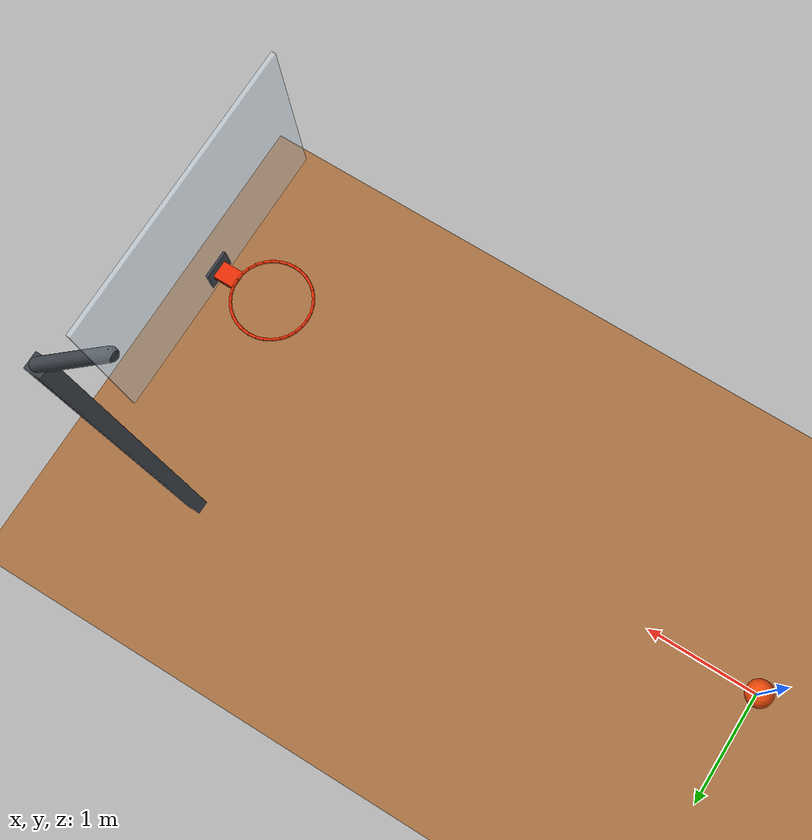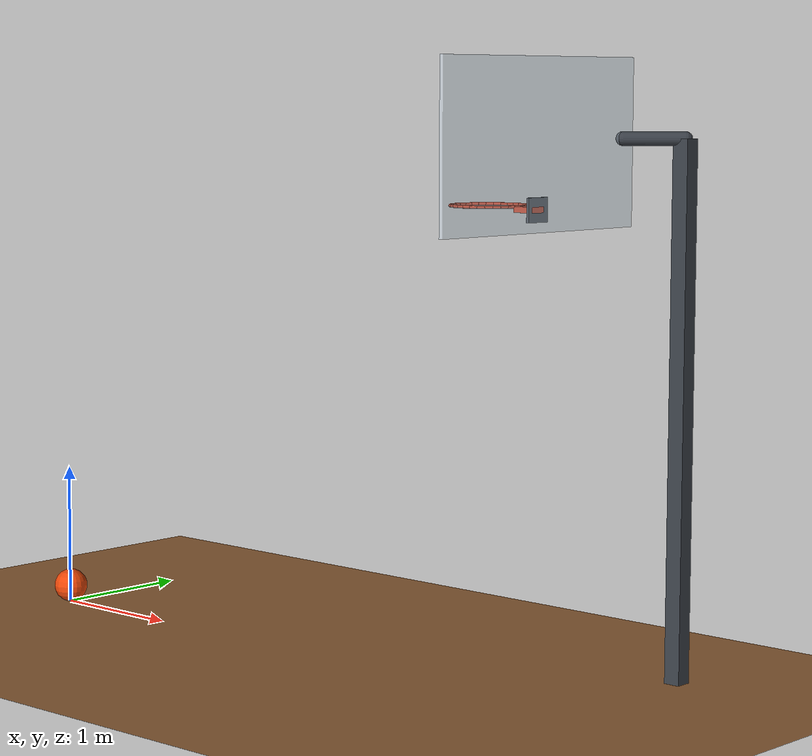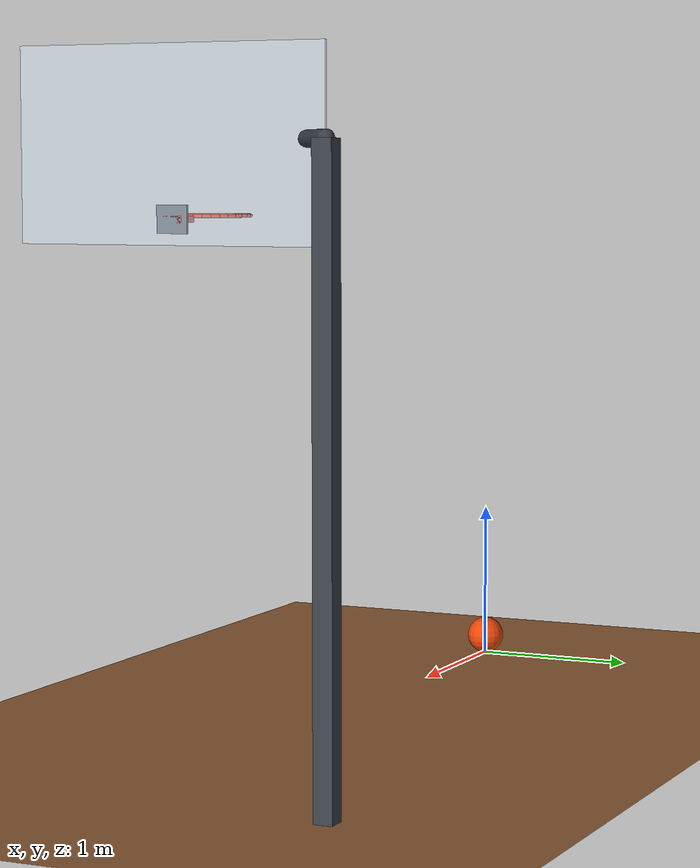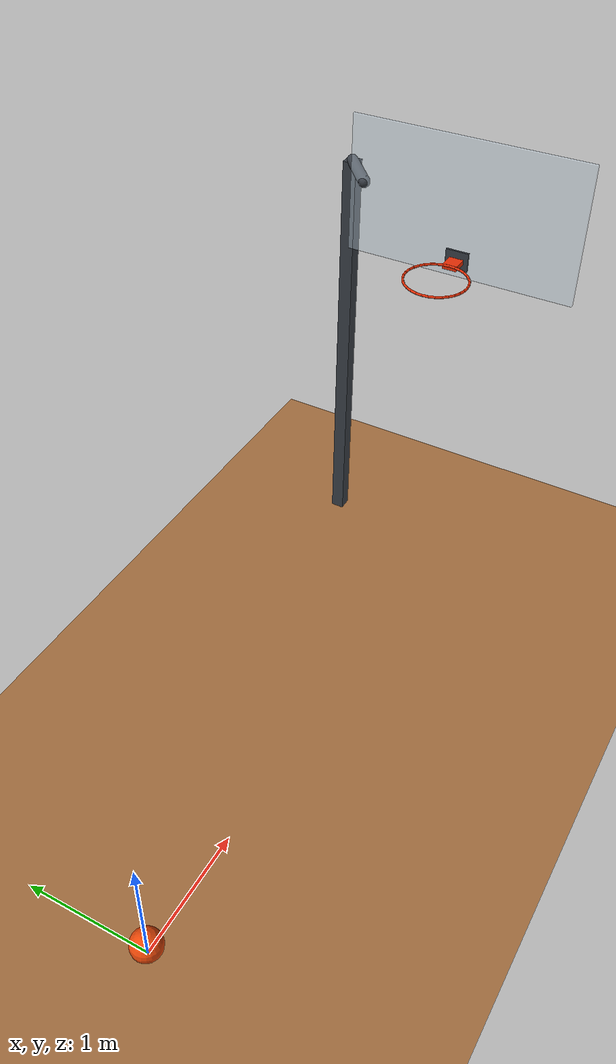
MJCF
<mujoco model="basketball_shot">
  <compiler angle="degree"/>
  <option timestep="0.002" gravity="0 0 -9.81" integrator="RK4"/>

  <visual>
    <global offwidth="1280" offheight="720"/>
    <headlight ambient="0.35 0.35 0.35" diffuse="0.65 0.65 0.65" specular="0.2 0.2 0.2"/>
  </visual>

  <worldbody>
    <light name="court_light" pos="2 -3 8" dir="0 0.3 -1" directional="true"/>
    <camera name="shot_view" pos="2 -11 6" xyaxes="1 0 0 0 0.341743 0.939793"/>

    <geom name="floor" type="plane" pos="0 0 0" size="10 7 0.1" rgba="0.64 0.43 0.25 1" friction="0.7 0.01 0.001"/>

    <!-- Radius 0.12 m gives a regulation circumference of approximately 0.754 m. -->
    <body name="ball" pos="0 0 0.12">
      <freejoint/>
      <geom name="ball" type="sphere" size="0.12" mass="0.624" rgba="0.92 0.28 0.035 1" friction="0.8 0.01 0.001"/>
    </body>

    <!-- Rim center is 4 m horizontally from launch and 3.05 m above the floor. -->
    <body name="hoop" pos="4 0 3.05">
      <!-- The 32 capsule segments provide a minimum clear diameter of 0.4572 m. -->
      <geom name="rim_00" type="capsule" fromto="0.238750 0 0 0.234162 0.046578 0" size="0.009" rgba="0.9 0.18 0.025 1"/>
      <geom name="rim_01" type="capsule" fromto="0.234162 0.046578 0 0.220576 0.091366 0" size="0.009" rgba="0.9 0.18 0.025 1"/>
      <geom name="rim_02" type="capsule" fromto="0.220576 0.091366 0 0.198513 0.132642 0" size="0.009" rgba="0.9 0.18 0.025 1"/>
      <geom name="rim_03" type="capsule" fromto="0.198513 0.132642 0 0.168822 0.168822 0" size="0.009" rgba="0.9 0.18 0.025 1"/>
      <geom name="rim_04" type="capsule" fromto="0.168822 0.168822 0 0.132642 0.198513 0" size="0.009" rgba="0.9 0.18 0.025 1"/>
      <geom name="rim_05" type="capsule" fromto="0.132642 0.198513 0 0.091366 0.220576 0" size="0.009" rgba="0.9 0.18 0.025 1"/>
      <geom name="rim_06" type="capsule" fromto="0.091366 0.220576 0 0.046578 0.234162 0" size="0.009" rgba="0.9 0.18 0.025 1"/>
      <geom name="rim_07" type="capsule" fromto="0.046578 0.234162 0 0 0.238750 0" size="0.009" rgba="0.9 0.18 0.025 1"/>
      <geom name="rim_08" type="capsule" fromto="0 0.238750 0 -0.046578 0.234162 0" size="0.009" rgba="0.9 0.18 0.025 1"/>
      <geom name="rim_09" type="capsule" fromto="-0.046578 0.234162 0 -0.091366 0.220576 0" size="0.009" rgba="0.9 0.18 0.025 1"/>
      <geom name="rim_10" type="capsule" fromto="-0.091366 0.220576 0 -0.132642 0.198513 0" size="0.009" rgba="0.9 0.18 0.025 1"/>
      <geom name="rim_11" type="capsule" fromto="-0.132642 0.198513 0 -0.168822 0.168822 0" size="0.009" rgba="0.9 0.18 0.025 1"/>
      <geom name="rim_12" type="capsule" fromto="-0.168822 0.168822 0 -0.198513 0.132642 0" size="0.009" rgba="0.9 0.18 0.025 1"/>
      <geom name="rim_13" type="capsule" fromto="-0.198513 0.132642 0 -0.220576 0.091366 0" size="0.009" rgba="0.9 0.18 0.025 1"/>
      <geom name="rim_14" type="capsule" fromto="-0.220576 0.091366 0 -0.234162 0.046578 0" size="0.009" rgba="0.9 0.18 0.025 1"/>
      <geom name="rim_15" type="capsule" fromto="-0.234162 0.046578 0 -0.238750 0 0" size="0.009" rgba="0.9 0.18 0.025 1"/>
      <geom name="rim_16" type="capsule" fromto="-0.238750 0 0 -0.234162 -0.046578 0" size="0.009" rgba="0.9 0.18 0.025 1"/>
      <geom name="rim_17" type="capsule" fromto="-0.234162 -0.046578 0 -0.220576 -0.091366 0" size="0.009" rgba="0.9 0.18 0.025 1"/>
      <geom name="rim_18" type="capsule" fromto="-0.220576 -0.091366 0 -0.198513 -0.132642 0" size="0.009" rgba="0.9 0.18 0.025 1"/>
      <geom name="rim_19" type="capsule" fromto="-0.198513 -0.132642 0 -0.168822 -0.168822 0" size="0.009" rgba="0.9 0.18 0.025 1"/>
      <geom name="rim_20" type="capsule" fromto="-0.168822 -0.168822 0 -0.132642 -0.198513 0" size="0.009" rgba="0.9 0.18 0.025 1"/>
      <geom name="rim_21" type="capsule" fromto="-0.132642 -0.198513 0 -0.091366 -0.220576 0" size="0.009" rgba="0.9 0.18 0.025 1"/>
      <geom name="rim_22" type="capsule" fromto="-0.091366 -0.220576 0 -0.046578 -0.234162 0" size="0.009" rgba="0.9 0.18 0.025 1"/>
      <geom name="rim_23" type="capsule" fromto="-0.046578 -0.234162 0 0 -0.238750 0" size="0.009" rgba="0.9 0.18 0.025 1"/>
      <geom name="rim_24" type="capsule" fromto="0 -0.238750 0 0.046578 -0.234162 0" size="0.009" rgba="0.9 0.18 0.025 1"/>
      <geom name="rim_25" type="capsule" fromto="0.046578 -0.234162 0 0.091366 -0.220576 0" size="0.009" rgba="0.9 0.18 0.025 1"/>
      <geom name="rim_26" type="capsule" fromto="0.091366 -0.220576 0 0.132642 -0.198513 0" size="0.009" rgba="0.9 0.18 0.025 1"/>
      <geom name="rim_27" type="capsule" fromto="0.132642 -0.198513 0 0.168822 -0.168822 0" size="0.009" rgba="0.9 0.18 0.025 1"/>
      <geom name="rim_28" type="capsule" fromto="0.168822 -0.168822 0 0.198513 -0.132642 0" size="0.009" rgba="0.9 0.18 0.025 1"/>
      <geom name="rim_29" type="capsule" fromto="0.198513 -0.132642 0 0.220576 -0.091366 0" size="0.009" rgba="0.9 0.18 0.025 1"/>
      <geom name="rim_30" type="capsule" fromto="0.220576 -0.091366 0 0.234162 -0.046578 0" size="0.009" rgba="0.9 0.18 0.025 1"/>
      <geom name="rim_31" type="capsule" fromto="0.234162 -0.046578 0 0.238750 0 0" size="0.009" rgba="0.9 0.18 0.025 1"/>

      <!-- Backboard front is 0.381 m behind the rim center. -->
      <geom name="backboard" type="box" pos="0.3935 0 0.375" size="0.0125 0.9 0.525" rgba="0.82 0.89 0.95 0.45"/>
      <geom name="rim_mount" type="box" pos="0.31 0 -0.015" size="0.071 0.055 0.018" rgba="0.9 0.18 0.025 1"/>
      <geom name="mount_plate" type="box" pos="0.373 0 -0.015" size="0.008 0.09 0.075" rgba="0.22 0.24 0.27 1"/>

      <!-- Offset support leaves the ball's exit path unobstructed. -->
      <geom name="support_post" type="box" pos="0.70 1.05 -1.325" size="0.055 0.055 1.725" rgba="0.22 0.24 0.27 1"/>
      <geom name="support_arm" type="capsule" fromto="0.406 0.80 0.40 0.70 1.05 0.40" size="0.045" rgba="0.22 0.24 0.27 1"/>
    </body>
  </worldbody>

  <!-- At t = 4/3 s: x = 4 m, z = 3.05 m, and vertical velocity = -4.3425 m/s. -->
  <keyframe>
    <key name="start" time="0" qpos="0 0 0.12 1 0 0 0" qvel="3 0 8.7375 0 0 0"/>
  </keyframe>
</mujoco>
